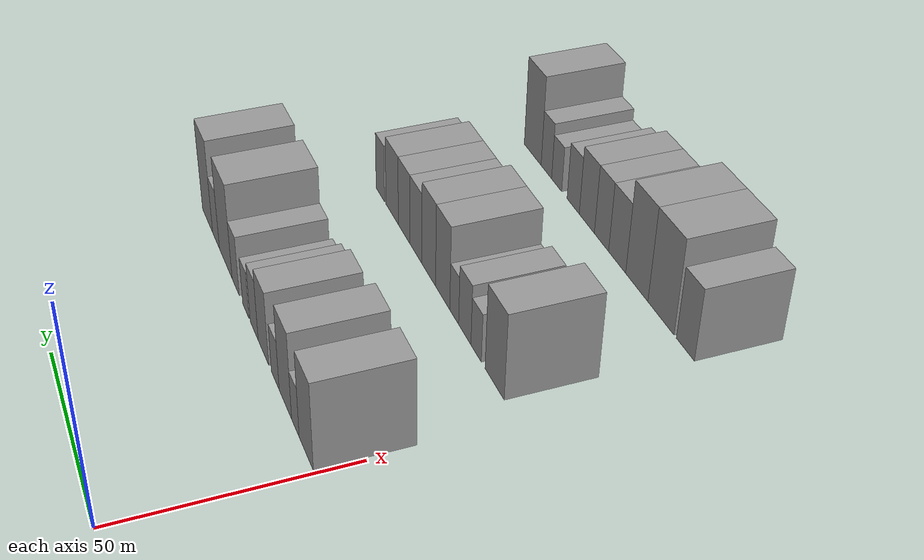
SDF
<sdf version="1.6">
 <world name="default">
  <model name="building_45">
   <static>1</static>
   <pose>50.0000 5.3530 0 0.000000 0.000000 0.000000</pose>
   <link name="link">
    <pose>0 0 10.50 0 0 0</pose>
    <collision name="collision"><geometry><box><size>20.0000 9.3205 21.0000</size></box></geometry></collision>
    <visual name="visual">
     <cast_shadows>0</cast_shadows>
     <geometry><box><size>20.0000 9.3205 21.0000</size></box></geometry>
     <material>
      <script>
       <uri>model://grey_wall/materials/scripts</uri>
       <uri>model://grey_wall/materials/textures</uri>
       <name>vrc/grey_wall</name>
      </script>
     </material>
    </visual>
   </link>
  </model>
  <model name="building_46">
   <static>1</static>
   <pose>50.0000 12.5879 0 0.000000 0.000000 0.000000</pose>
   <link name="link">
    <pose>0 0 6.00 0 0 0</pose>
    <collision name="collision"><geometry><box><size>20.0000 5.1493 12.0000</size></box></geometry></collision>
    <visual name="visual">
     <cast_shadows>0</cast_shadows>
     <geometry><box><size>20.0000 5.1493 12.0000</size></box></geometry>
     <material>
      <script>
       <uri>model://grey_wall/materials/scripts</uri>
       <uri>model://grey_wall/materials/textures</uri>
       <name>vrc/grey_wall</name>
      </script>
     </material>
    </visual>
   </link>
  </model>
  <model name="building_47">
   <static>1</static>
   <pose>50.0000 19.5929 0 0.000000 0.000000 0.000000</pose>
   <link name="link">
    <pose>0 0 10.50 0 0 0</pose>
    <collision name="collision"><geometry><box><size>20.0000 8.8607 21.0000</size></box></geometry></collision>
    <visual name="visual">
     <cast_shadows>0</cast_shadows>
     <geometry><box><size>20.0000 8.8607 21.0000</size></box></geometry>
     <material>
      <script>
       <uri>model://grey_wall/materials/scripts</uri>
       <uri>model://grey_wall/materials/textures</uri>
       <name>vrc/grey_wall</name>
      </script>
     </material>
    </visual>
   </link>
  </model>
  <model name="building_48">
   <static>1</static>
   <pose>50.0000 26.9151 0 0.000000 0.000000 0.000000</pose>
   <link name="link">
    <pose>0 0 6.00 0 0 0</pose>
    <collision name="collision"><geometry><box><size>20.0000 5.7836 12.0000</size></box></geometry></collision>
    <visual name="visual">
     <cast_shadows>0</cast_shadows>
     <geometry><box><size>20.0000 5.7836 12.0000</size></box></geometry>
     <material>
      <script>
       <uri>model://grey_wall/materials/scripts</uri>
       <uri>model://grey_wall/materials/textures</uri>
       <name>vrc/grey_wall</name>
      </script>
     </material>
    </visual>
   </link>
  </model>
  <model name="building_49">
   <static>1</static>
   <pose>50.0000 35.8668 0 0.000000 0.000000 0.000000</pose>
   <link name="link">
    <pose>0 0 9.00 0 0 0</pose>
    <collision name="collision"><geometry><box><size>20.0000 8.1198 18.0000</size></box></geometry></collision>
    <visual name="visual">
     <cast_shadows>0</cast_shadows>
     <geometry><box><size>20.0000 8.1198 18.0000</size></box></geometry>
     <material>
      <script>
       <uri>model://grey_wall/materials/scripts</uri>
       <uri>model://grey_wall/materials/textures</uri>
       <name>vrc/grey_wall</name>
      </script>
     </material>
    </visual>
   </link>
  </model>
  <model name="building_50">
   <static>1</static>
   <pose>50.0000 43.1250 0 0.000000 0.000000 0.000000</pose>
   <link name="link">
    <pose>0 0 7.50 0 0 0</pose>
    <collision name="collision"><geometry><box><size>20.0000 6.3967 15.0000</size></box></geometry></collision>
    <visual name="visual">
     <cast_shadows>0</cast_shadows>
     <geometry><box><size>20.0000 6.3967 15.0000</size></box></geometry>
     <material>
      <script>
       <uri>model://grey_wall/materials/scripts</uri>
       <uri>model://grey_wall/materials/textures</uri>
       <name>vrc/grey_wall</name>
      </script>
     </material>
    </visual>
   </link>
  </model>
  <model name="building_51">
   <static>1</static>
   <pose>50.0000 49.9456 0 0.000000 0.000000 0.000000</pose>
   <link name="link">
    <pose>0 0 6.00 0 0 0</pose>
    <collision name="collision"><geometry><box><size>20.0000 5.2446 12.0000</size></box></geometry></collision>
    <visual name="visual">
     <cast_shadows>0</cast_shadows>
     <geometry><box><size>20.0000 5.2446 12.0000</size></box></geometry>
     <material>
      <script>
       <uri>model://grey_wall/materials/scripts</uri>
       <uri>model://grey_wall/materials/textures</uri>
       <name>vrc/grey_wall</name>
      </script>
     </material>
    </visual>
   </link>
  </model>
  <model name="building_52">
   <static>1</static>
   <pose>50.0000 58.6440 0 0.000000 0.000000 0.000000</pose>
   <link name="link">
    <pose>0 0 7.50 0 0 0</pose>
    <collision name="collision"><geometry><box><size>20.0000 6.1522 15.0000</size></box></geometry></collision>
    <visual name="visual">
     <cast_shadows>0</cast_shadows>
     <geometry><box><size>20.0000 6.1522 15.0000</size></box></geometry>
     <material>
      <script>
       <uri>model://grey_wall/materials/scripts</uri>
       <uri>model://grey_wall/materials/textures</uri>
       <name>vrc/grey_wall</name>
      </script>
     </material>
    </visual>
   </link>
  </model>
  <model name="building_53">
   <static>1</static>
   <pose>50.0000 67.4244 0 0.000000 0.000000 0.000000</pose>
   <link name="link">
    <pose>0 0 12.00 0 0 0</pose>
    <collision name="collision"><geometry><box><size>20.0000 11.4087 24.0000</size></box></geometry></collision>
    <visual name="visual">
     <cast_shadows>0</cast_shadows>
     <geometry><box><size>20.0000 11.4087 24.0000</size></box></geometry>
     <material>
      <script>
       <uri>model://grey_wall/materials/scripts</uri>
       <uri>model://grey_wall/materials/textures</uri>
       <name>vrc/grey_wall</name>
      </script>
     </material>
    </visual>
   </link>
  </model>
  <model name="building_54">
   <static>1</static>
   <pose>50.0000 76.3654 0 0.000000 0.000000 0.000000</pose>
   <link name="link">
    <pose>0 0 7.50 0 0 0</pose>
    <collision name="collision"><geometry><box><size>20.0000 6.4732 15.0000</size></box></geometry></collision>
    <visual name="visual">
     <cast_shadows>0</cast_shadows>
     <geometry><box><size>20.0000 6.4732 15.0000</size></box></geometry>
     <material>
      <script>
       <uri>model://grey_wall/materials/scripts</uri>
       <uri>model://grey_wall/materials/textures</uri>
       <name>vrc/grey_wall</name>
      </script>
     </material>
    </visual>
   </link>
  </model>
  <model name="building_55">
   <static>1</static>
   <pose>50.0000 84.5318 0 0.000000 0.000000 0.000000</pose>
   <link name="link">
    <pose>0 0 12.00 0 0 0</pose>
    <collision name="collision"><geometry><box><size>20.0000 9.8596 24.0000</size></box></geometry></collision>
    <visual name="visual">
     <cast_shadows>0</cast_shadows>
     <geometry><box><size>20.0000 9.8596 24.0000</size></box></geometry>
     <material>
      <script>
       <uri>model://grey_wall/materials/scripts</uri>
       <uri>model://grey_wall/materials/textures</uri>
       <name>vrc/grey_wall</name>
      </script>
     </material>
    </visual>
   </link>
  </model>
  <model name="building_123">
   <static>1</static>
   <pose>90.0000 11.7126 0 0.000000 0.000000 0.000000</pose>
   <link name="link">
    <pose>0 0 10.50 0 0 0</pose>
    <collision name="collision"><geometry><box><size>20.0000 9.8920 21.0000</size></box></geometry></collision>
    <visual name="visual">
     <cast_shadows>0</cast_shadows>
     <geometry><box><size>20.0000 9.8920 21.0000</size></box></geometry>
     <material>
      <script>
       <uri>model://grey_wall/materials/scripts</uri>
       <uri>model://grey_wall/materials/textures</uri>
       <name>vrc/grey_wall</name>
      </script>
     </material>
    </visual>
   </link>
  </model>
  <model name="building_124">
   <static>1</static>
   <pose>90.0000 21.4859 0 0.000000 0.000000 0.000000</pose>
   <link name="link">
    <pose>0 0 6.00 0 0 0</pose>
    <collision name="collision"><geometry><box><size>20.0000 5.6545 12.0000</size></box></geometry></collision>
    <visual name="visual">
     <cast_shadows>0</cast_shadows>
     <geometry><box><size>20.0000 5.6545 12.0000</size></box></geometry>
     <material>
      <script>
       <uri>model://grey_wall/materials/scripts</uri>
       <uri>model://grey_wall/materials/textures</uri>
       <name>vrc/grey_wall</name>
      </script>
     </material>
    </visual>
   </link>
  </model>
  <model name="building_125">
   <static>1</static>
   <pose>90.0000 27.7591 0 0.000000 0.000000 0.000000</pose>
   <link name="link">
    <pose>0 0 7.50 0 0 0</pose>
    <collision name="collision"><geometry><box><size>20.0000 6.8920 15.0000</size></box></geometry></collision>
    <visual name="visual">
     <cast_shadows>0</cast_shadows>
     <geometry><box><size>20.0000 6.8920 15.0000</size></box></geometry>
     <material>
      <script>
       <uri>model://grey_wall/materials/scripts</uri>
       <uri>model://grey_wall/materials/textures</uri>
       <name>vrc/grey_wall</name>
      </script>
     </material>
    </visual>
   </link>
  </model>
  <model name="building_126">
   <static>1</static>
   <pose>90.0000 33.7719 0 0.000000 0.000000 0.000000</pose>
   <link name="link">
    <pose>0 0 6.00 0 0 0</pose>
    <collision name="collision"><geometry><box><size>20.0000 5.1335 12.0000</size></box></geometry></collision>
    <visual name="visual">
     <cast_shadows>0</cast_shadows>
     <geometry><box><size>20.0000 5.1335 12.0000</size></box></geometry>
     <material>
      <script>
       <uri>model://grey_wall/materials/scripts</uri>
       <uri>model://grey_wall/materials/textures</uri>
       <name>vrc/grey_wall</name>
      </script>
     </material>
    </visual>
   </link>
  </model>
  <model name="building_127">
   <static>1</static>
   <pose>90.0000 40.6064 0 0.000000 0.000000 0.000000</pose>
   <link name="link">
    <pose>0 0 10.50 0 0 0</pose>
    <collision name="collision"><geometry><box><size>20.0000 8.5354 21.0000</size></box></geometry></collision>
    <visual name="visual">
     <cast_shadows>0</cast_shadows>
     <geometry><box><size>20.0000 8.5354 21.0000</size></box></geometry>
     <material>
      <script>
       <uri>model://grey_wall/materials/scripts</uri>
       <uri>model://grey_wall/materials/textures</uri>
       <name>vrc/grey_wall</name>
      </script>
     </material>
    </visual>
   </link>
  </model>
  <model name="building_128">
   <static>1</static>
   <pose>90.0000 49.1750 0 0.000000 0.000000 0.000000</pose>
   <link name="link">
    <pose>0 0 10.50 0 0 0</pose>
    <collision name="collision"><geometry><box><size>20.0000 8.6019 21.0000</size></box></geometry></collision>
    <visual name="visual">
     <cast_shadows>0</cast_shadows>
     <geometry><box><size>20.0000 8.6019 21.0000</size></box></geometry>
     <material>
      <script>
       <uri>model://grey_wall/materials/scripts</uri>
       <uri>model://grey_wall/materials/textures</uri>
       <name>vrc/grey_wall</name>
      </script>
     </material>
    </visual>
   </link>
  </model>
  <model name="building_129">
   <static>1</static>
   <pose>90.0000 57.3554 0 0.000000 0.000000 0.000000</pose>
   <link name="link">
    <pose>0 0 9.00 0 0 0</pose>
    <collision name="collision"><geometry><box><size>20.0000 7.7589 18.0000</size></box></geometry></collision>
    <visual name="visual">
     <cast_shadows>0</cast_shadows>
     <geometry><box><size>20.0000 7.7589 18.0000</size></box></geometry>
     <material>
      <script>
       <uri>model://grey_wall/materials/scripts</uri>
       <uri>model://grey_wall/materials/textures</uri>
       <name>vrc/grey_wall</name>
      </script>
     </material>
    </visual>
   </link>
  </model>
  <model name="building_130">
   <static>1</static>
   <pose>90.0000 65.0699 0 0.000000 0.000000 0.000000</pose>
   <link name="link">
    <pose>0 0 9.00 0 0 0</pose>
    <collision name="collision"><geometry><box><size>20.0000 7.6700 18.0000</size></box></geometry></collision>
    <visual name="visual">
     <cast_shadows>0</cast_shadows>
     <geometry><box><size>20.0000 7.6700 18.0000</size></box></geometry>
     <material>
      <script>
       <uri>model://grey_wall/materials/scripts</uri>
       <uri>model://grey_wall/materials/textures</uri>
       <name>vrc/grey_wall</name>
      </script>
     </material>
    </visual>
   </link>
  </model>
  <model name="building_131">
   <static>1</static>
   <pose>90.0000 73.2366 0 0.000000 0.000000 0.000000</pose>
   <link name="link">
    <pose>0 0 9.00 0 0 0</pose>
    <collision name="collision"><geometry><box><size>20.0000 8.6634 18.0000</size></box></geometry></collision>
    <visual name="visual">
     <cast_shadows>0</cast_shadows>
     <geometry><box><size>20.0000 8.6634 18.0000</size></box></geometry>
     <material>
      <script>
       <uri>model://grey_wall/materials/scripts</uri>
       <uri>model://grey_wall/materials/textures</uri>
       <name>vrc/grey_wall</name>
      </script>
     </material>
    </visual>
   </link>
  </model>
  <model name="building_132">
   <static>1</static>
   <pose>90.0000 81.5780 0 0.000000 0.000000 0.000000</pose>
   <link name="link">
    <pose>0 0 7.50 0 0 0</pose>
    <collision name="collision"><geometry><box><size>20.0000 6.0194 15.0000</size></box></geometry></collision>
    <visual name="visual">
     <cast_shadows>0</cast_shadows>
     <geometry><box><size>20.0000 6.0194 15.0000</size></box></geometry>
     <material>
      <script>
       <uri>model://grey_wall/materials/scripts</uri>
       <uri>model://grey_wall/materials/textures</uri>
       <name>vrc/grey_wall</name>
      </script>
     </material>
    </visual>
   </link>
  </model>
  <model name="building_211">
   <static>1</static>
   <pose>130.0000 8.5926 0 0.000000 0.000000 0.000000</pose>
   <link name="link">
    <pose>0 0 9.00 0 0 0</pose>
    <collision name="collision"><geometry><box><size>20.0000 7.6254 18.0000</size></box></geometry></collision>
    <visual name="visual">
     <cast_shadows>0</cast_shadows>
     <geometry><box><size>20.0000 7.6254 18.0000</size></box></geometry>
     <material>
      <script>
       <uri>model://grey_wall/materials/scripts</uri>
       <uri>model://grey_wall/materials/textures</uri>
       <name>vrc/grey_wall</name>
      </script>
     </material>
    </visual>
   </link>
  </model>
  <model name="building_212">
   <static>1</static>
   <pose>130.0000 19.2182 0 0.000000 0.000000 0.000000</pose>
   <link name="link">
    <pose>0 0 12.00 0 0 0</pose>
    <collision name="collision"><geometry><box><size>20.0000 11.6257 24.0000</size></box></geometry></collision>
    <visual name="visual">
     <cast_shadows>0</cast_shadows>
     <geometry><box><size>20.0000 11.6257 24.0000</size></box></geometry>
     <material>
      <script>
       <uri>model://grey_wall/materials/scripts</uri>
       <uri>model://grey_wall/materials/textures</uri>
       <name>vrc/grey_wall</name>
      </script>
     </material>
    </visual>
   </link>
  </model>
  <model name="building_213">
   <static>1</static>
   <pose>130.0000 30.2491 0 0.000000 0.000000 0.000000</pose>
   <link name="link">
    <pose>0 0 12.00 0 0 0</pose>
    <collision name="collision"><geometry><box><size>20.0000 10.4361 24.0000</size></box></geometry></collision>
    <visual name="visual">
     <cast_shadows>0</cast_shadows>
     <geometry><box><size>20.0000 10.4361 24.0000</size></box></geometry>
     <material>
      <script>
       <uri>model://grey_wall/materials/scripts</uri>
       <uri>model://grey_wall/materials/textures</uri>
       <name>vrc/grey_wall</name>
      </script>
     </material>
    </visual>
   </link>
  </model>
  <model name="building_214">
   <static>1</static>
   <pose>130.0000 39.6682 0 0.000000 0.000000 0.000000</pose>
   <link name="link">
    <pose>0 0 9.00 0 0 0</pose>
    <collision name="collision"><geometry><box><size>20.0000 8.4023 18.0000</size></box></geometry></collision>
    <visual name="visual">
     <cast_shadows>0</cast_shadows>
     <geometry><box><size>20.0000 8.4023 18.0000</size></box></geometry>
     <material>
      <script>
       <uri>model://grey_wall/materials/scripts</uri>
       <uri>model://grey_wall/materials/textures</uri>
       <name>vrc/grey_wall</name>
      </script>
     </material>
    </visual>
   </link>
  </model>
  <model name="building_215">
   <static>1</static>
   <pose>130.0000 47.4897 0 0.000000 0.000000 0.000000</pose>
   <link name="link">
    <pose>0 0 9.00 0 0 0</pose>
    <collision name="collision"><geometry><box><size>20.0000 7.2406 18.0000</size></box></geometry></collision>
    <visual name="visual">
     <cast_shadows>0</cast_shadows>
     <geometry><box><size>20.0000 7.2406 18.0000</size></box></geometry>
     <material>
      <script>
       <uri>model://grey_wall/materials/scripts</uri>
       <uri>model://grey_wall/materials/textures</uri>
       <name>vrc/grey_wall</name>
      </script>
     </material>
    </visual>
   </link>
  </model>
  <model name="building_216">
   <static>1</static>
   <pose>130.0000 55.1090 0 0.000000 0.000000 0.000000</pose>
   <link name="link">
    <pose>0 0 9.00 0 0 0</pose>
    <collision name="collision"><geometry><box><size>20.0000 7.9981 18.0000</size></box></geometry></collision>
    <visual name="visual">
     <cast_shadows>0</cast_shadows>
     <geometry><box><size>20.0000 7.9981 18.0000</size></box></geometry>
     <material>
      <script>
       <uri>model://grey_wall/materials/scripts</uri>
       <uri>model://grey_wall/materials/textures</uri>
       <name>vrc/grey_wall</name>
      </script>
     </material>
    </visual>
   </link>
  </model>
  <model name="building_217">
   <static>1</static>
   <pose>130.0000 62.4308 0 0.000000 0.000000 0.000000</pose>
   <link name="link">
    <pose>0 0 7.50 0 0 0</pose>
    <collision name="collision"><geometry><box><size>20.0000 6.6455 15.0000</size></box></geometry></collision>
    <visual name="visual">
     <cast_shadows>0</cast_shadows>
     <geometry><box><size>20.0000 6.6455 15.0000</size></box></geometry>
     <material>
      <script>
       <uri>model://grey_wall/materials/scripts</uri>
       <uri>model://grey_wall/materials/textures</uri>
       <name>vrc/grey_wall</name>
      </script>
     </material>
    </visual>
   </link>
  </model>
  <model name="building_218">
   <static>1</static>
   <pose>130.0000 71.6276 0 0.000000 0.000000 0.000000</pose>
   <link name="link">
    <pose>0 0 6.00 0 0 0</pose>
    <collision name="collision"><geometry><box><size>20.0000 5.7482 12.0000</size></box></geometry></collision>
    <visual name="visual">
     <cast_shadows>0</cast_shadows>
     <geometry><box><size>20.0000 5.7482 12.0000</size></box></geometry>
     <material>
      <script>
       <uri>model://grey_wall/materials/scripts</uri>
       <uri>model://grey_wall/materials/textures</uri>
       <name>vrc/grey_wall</name>
      </script>
     </material>
    </visual>
   </link>
  </model>
  <model name="building_219">
   <static>1</static>
   <pose>130.0000 77.5711 0 0.000000 0.000000 0.000000</pose>
   <link name="link">
    <pose>0 0 7.50 0 0 0</pose>
    <collision name="collision"><geometry><box><size>20.0000 6.1387 15.0000</size></box></geometry></collision>
    <visual name="visual">
     <cast_shadows>0</cast_shadows>
     <geometry><box><size>20.0000 6.1387 15.0000</size></box></geometry>
     <material>
      <script>
       <uri>model://grey_wall/materials/scripts</uri>
       <uri>model://grey_wall/materials/textures</uri>
       <name>vrc/grey_wall</name>
      </script>
     </material>
    </visual>
   </link>
  </model>
  <model name="building_220">
   <static>1</static>
   <pose>130.0000 85.7038 0 0.000000 0.000000 0.000000</pose>
   <link name="link">
    <pose>0 0 12.00 0 0 0</pose>
    <collision name="collision"><geometry><box><size>20.0000 10.1268 24.0000</size></box></geometry></collision>
    <visual name="visual">
     <cast_shadows>0</cast_shadows>
     <geometry><box><size>20.0000 10.1268 24.0000</size></box></geometry>
     <material>
      <script>
       <uri>model://grey_wall/materials/scripts</uri>
       <uri>model://grey_wall/materials/textures</uri>
       <name>vrc/grey_wall</name>
      </script>
     </material>
    </visual>
   </link>
  </model>
 </world>
</sdf>
